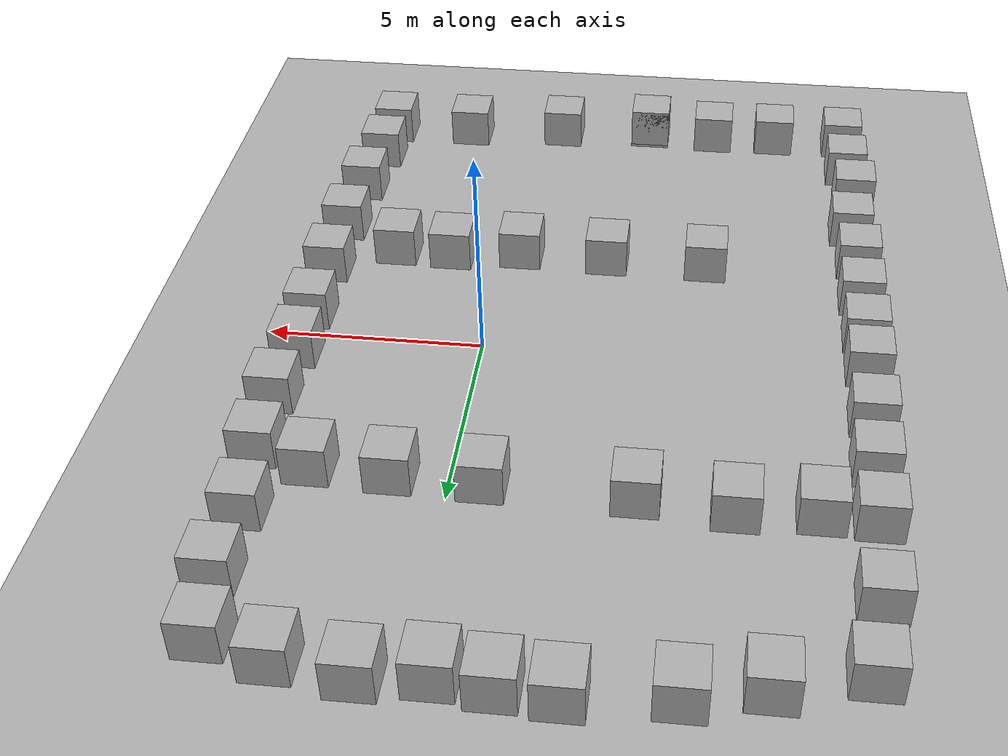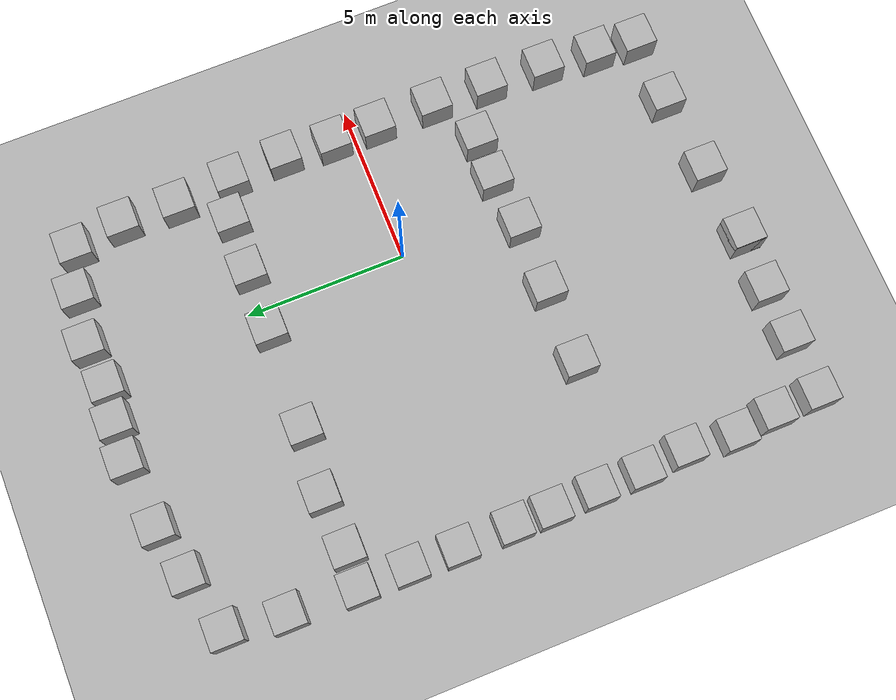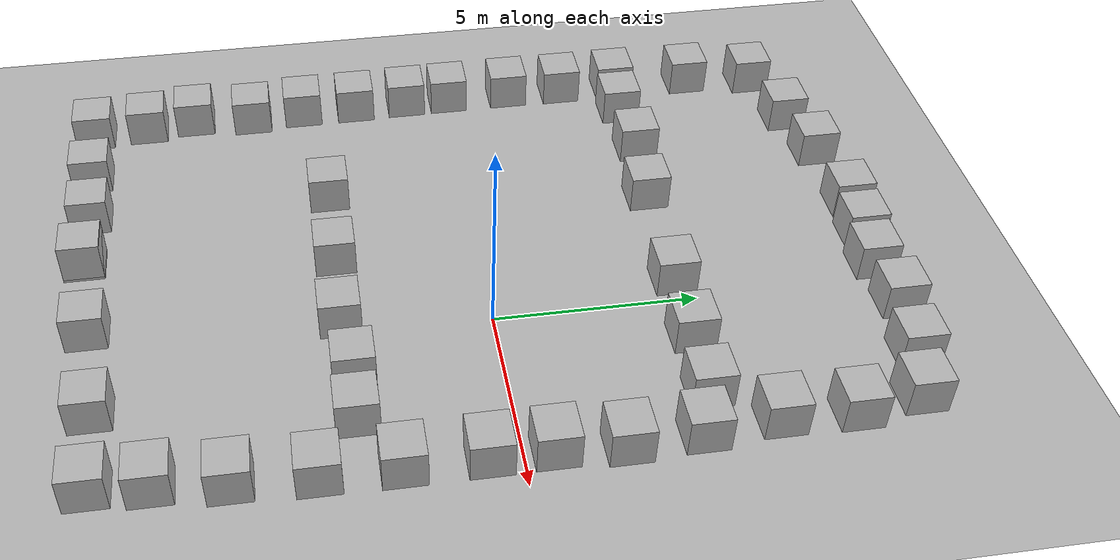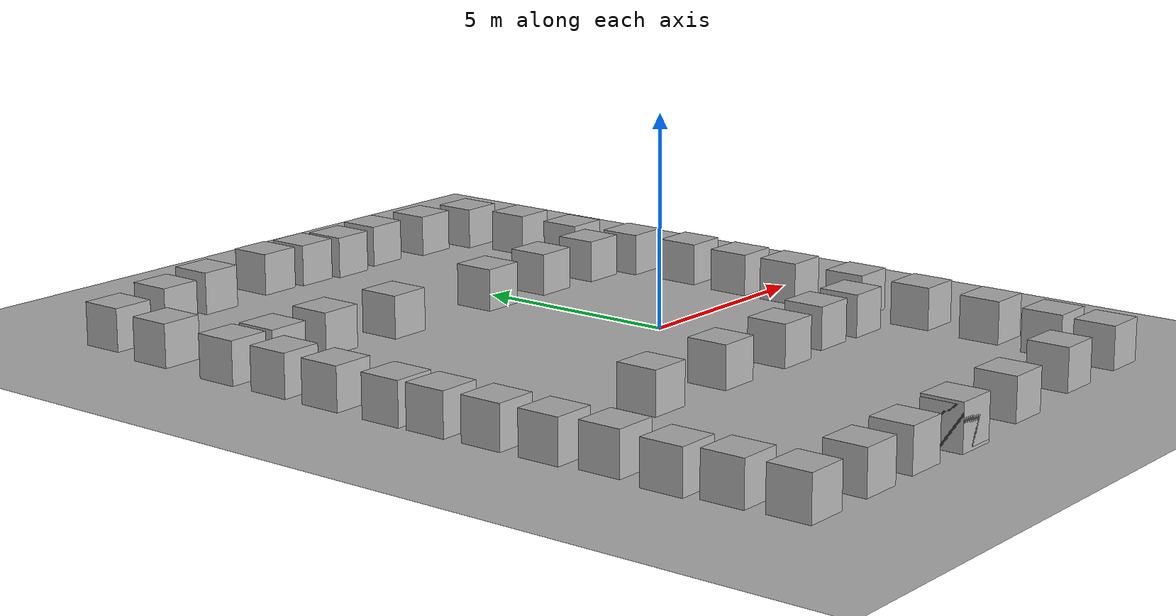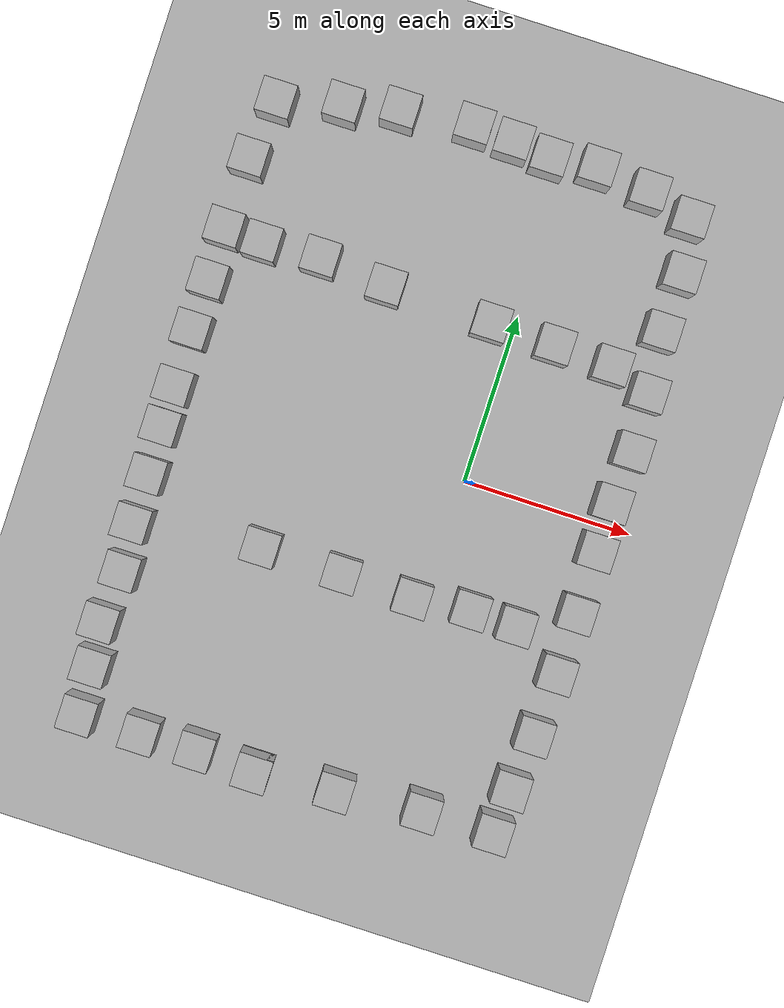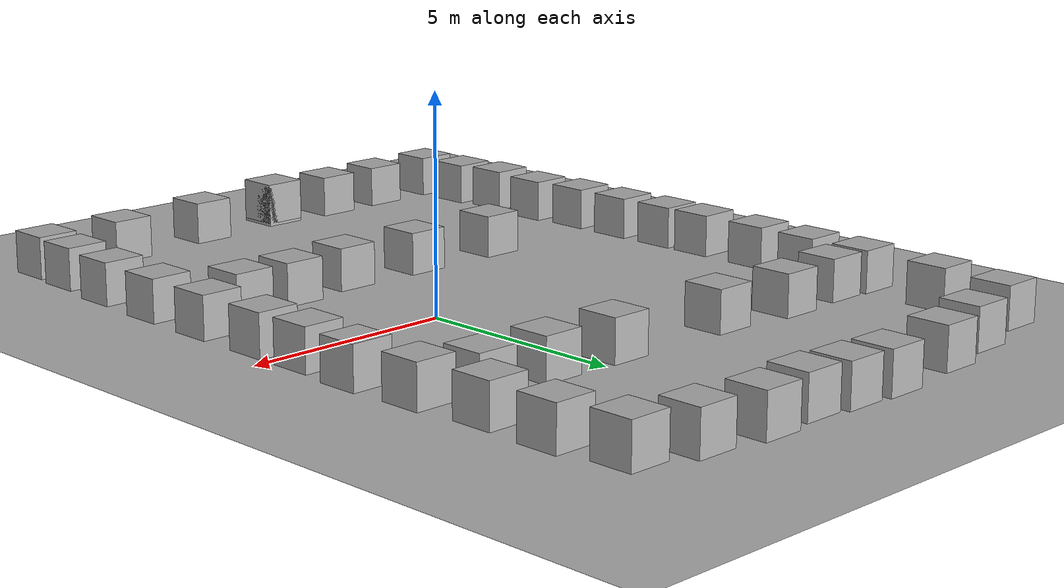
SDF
<sdf version='1.9'>
  <world name='default'>
    <plugin name='gz::sim::systems::Physics' filename='gz-sim-physics-system'/>
    <plugin name='gz::sim::systems::UserCommands' filename='gz-sim-user-commands-system'/>
    <plugin name='gz::sim::systems::SceneBroadcaster' filename='gz-sim-scene-broadcaster-system'/>
    <plugin name='gz::sim::systems::Imu' filename='gz-sim-imu-system'/>
    <scene>
      <shadows>false</shadows>
      <ambient>0.4 0.4 0.4 1</ambient>
      <background>0.7 0.7 0.7 1</background>
    </scene>
    <physics type='ode'>
      <real_time_update_rate>1000</real_time_update_rate>
      <max_step_size>0.001</max_step_size>
      <real_time_factor>1</real_time_factor>
      <ode>
        <solver>
          <type>quick</type>
          <iters>150</iters>
          <precon_iters>0</precon_iters>
          <sor>1.3999999999999999</sor>
          <use_dynamic_moi_rescaling>true</use_dynamic_moi_rescaling>
        </solver>
        <constraints>
          <cfm>1.0000000000000001e-05</cfm>
          <erp>0.20000000000000001</erp>
          <contact_max_correcting_vel>2000</contact_max_correcting_vel>
          <contact_surface_layer>0.01</contact_surface_layer>
        </constraints>
      </ode>
    </physics>
    <gravity>0 0 -9.8</gravity>
    <magnetic_field>6e-06 2.3e-05 -4.2e-05</magnetic_field>
    <atmosphere type='adiabatic'/>
    <model name='ground_plane'>
      <static>true</static>
      <link name='link'>
        <collision name='collision'>
          <geometry>
            <plane>
              <normal>0 0 1</normal>
              <size>100 100</size>
            </plane>
          </geometry>
          <surface>
            <friction>
              <ode>
                <mu>100</mu>
                <mu2>50</mu2>
              </ode>
            </friction>
            <bounce/>
            <contact/>
          </surface>
        </collision>
        <visual name='visual'>
          <cast_shadows>false</cast_shadows>
          <geometry>
            <plane>
              <normal>0 0 1</normal>
              <size>100 100</size>
            </plane>
          </geometry>
          <material>
            <ambient>0.3 0.3 0.3 1</ambient>
            <diffuse>0.7 0.7 0.7 1</diffuse>
            <specular>0.01 0.01 0.01 1</specular>
          </material>
        </visual>
        <pose>0 0 0 0 -0 0</pose>
        <inertial>
          <pose>0 0 0 0 -0 0</pose>
          <mass>1</mass>
          <inertia>
            <ixx>1</ixx>
            <ixy>0</ixy>
            <ixz>0</ixz>
            <iyy>1</iyy>
            <iyz>0</iyz>
            <izz>1</izz>
          </inertia>
        </inertial>
        <enable_wind>false</enable_wind>
      </link>
      <pose>0 0 0 0 -0 0</pose>
      <self_collide>false</self_collide>
    </model>
    <model name='box'>
      <pose>3.79125 9.11451 0.5 0 0 -0</pose>
      <link name='box_link'>
        <inertial>
          <inertia>
            <ixx>0.16666</ixx>
            <ixy>0</ixy>
            <ixz>0</ixz>
            <iyy>0.16666</iyy>
            <iyz>0</iyz>
            <izz>0.16666</izz>
          </inertia>
          <mass>1</mass>
          <pose>0 0 0 0 -0 0</pose>
        </inertial>
        <collision name='box_collision'>
          <geometry>
            <box>
              <size>1 1 1</size>
            </box>
          </geometry>
          <surface>
            <friction>
              <ode/>
            </friction>
            <bounce/>
            <contact/>
          </surface>
        </collision>
        <visual name='box_visual'>
          <geometry>
            <box>
              <size>1 1 1</size>
            </box>
          </geometry>
          <material>
            <ambient>0.3 0.3 0.3 1</ambient>
            <diffuse>0.7 0.7 0.7 1</diffuse>
            <specular>1 1 1 1</specular>
          </material>
        </visual>
        <pose>0 0 0 0 -0 0</pose>
        <enable_wind>false</enable_wind>
      </link>
      <static>false</static>
      <self_collide>false</self_collide>
    </model>
    <model name='box_1'>
      <pose>4.04789 7.54786 0.5 0 0 -0</pose>
      <link name='box_link'>
        <inertial>
          <inertia>
            <ixx>0.16666</ixx>
            <ixy>0</ixy>
            <ixz>0</ixz>
            <iyy>0.16666</iyy>
            <iyz>0</iyz>
            <izz>0.16666</izz>
          </inertia>
          <mass>1</mass>
        </inertial>
        <collision name='box_collision'>
          <geometry>
            <box>
              <size>1 1 1</size>
            </box>
          </geometry>
          <surface>
            <friction>
              <ode/>
            </friction>
            <bounce/>
            <contact/>
          </surface>
        </collision>
        <visual name='box_visual'>
          <geometry>
            <box>
              <size>1 1 1</size>
            </box>
          </geometry>
          <material>
            <ambient>0.3 0.3 0.3 1</ambient>
            <diffuse>0.7 0.7 0.7 1</diffuse>
            <specular>1 1 1 1</specular>
          </material>
        </visual>
      </link>
      <static>false</static>
      <self_collide>false</self_collide>
    </model>
    <model name='box_2'>
      <pose>3.99851 5.79752 0.5 0 0 -0</pose>
      <link name='box_link'>
        <inertial>
          <inertia>
            <ixx>0.16666</ixx>
            <ixy>0</ixy>
            <ixz>0</ixz>
            <iyy>0.16666</iyy>
            <iyz>0</iyz>
            <izz>0.16666</izz>
          </inertia>
          <mass>1</mass>
        </inertial>
        <collision name='box_collision'>
          <geometry>
            <box>
              <size>1 1 1</size>
            </box>
          </geometry>
          <surface>
            <friction>
              <ode/>
            </friction>
            <bounce/>
            <contact/>
          </surface>
        </collision>
        <visual name='box_visual'>
          <geometry>
            <box>
              <size>1 1 1</size>
            </box>
          </geometry>
          <material>
            <ambient>0.3 0.3 0.3 1</ambient>
            <diffuse>0.7 0.7 0.7 1</diffuse>
            <specular>1 1 1 1</specular>
          </material>
        </visual>
      </link>
      <static>false</static>
      <self_collide>false</self_collide>
    </model>
    <model name='box_3'>
      <pose>4.16854 4.00996 0.5 0 0 -0</pose>
      <link name='box_link'>
        <inertial>
          <inertia>
            <ixx>0.16666</ixx>
            <ixy>0</ixy>
            <ixz>0</ixz>
            <iyy>0.16666</iyy>
            <iyz>0</iyz>
            <izz>0.16666</izz>
          </inertia>
          <mass>1</mass>
        </inertial>
        <collision name='box_collision'>
          <geometry>
            <box>
              <size>1 1 1</size>
            </box>
          </geometry>
          <surface>
            <friction>
              <ode/>
            </friction>
            <bounce/>
            <contact/>
          </surface>
        </collision>
        <visual name='box_visual'>
          <geometry>
            <box>
              <size>1 1 1</size>
            </box>
          </geometry>
          <material>
            <ambient>0.3 0.3 0.3 1</ambient>
            <diffuse>0.7 0.7 0.7 1</diffuse>
            <specular>1 1 1 1</specular>
          </material>
        </visual>
      </link>
      <static>false</static>
      <self_collide>false</self_collide>
    </model>
    <model name='box_2_1'>
      <pose>4.25547 2.28201 0.5 0 0 -0</pose>
      <link name='box_link'>
        <inertial>
          <inertia>
            <ixx>0.16666</ixx>
            <ixy>0</ixy>
            <ixz>0</ixz>
            <iyy>0.16666</iyy>
            <iyz>0</iyz>
            <izz>0.16666</izz>
          </inertia>
          <mass>1</mass>
        </inertial>
        <collision name='box_collision'>
          <geometry>
            <box>
              <size>1 1 1</size>
            </box>
          </geometry>
          <surface>
            <friction>
              <ode/>
            </friction>
            <bounce/>
            <contact/>
          </surface>
        </collision>
        <visual name='box_visual'>
          <geometry>
            <box>
              <size>1 1 1</size>
            </box>
          </geometry>
          <material>
            <ambient>0.3 0.3 0.3 1</ambient>
            <diffuse>0.7 0.7 0.7 1</diffuse>
            <specular>1 1 1 1</specular>
          </material>
        </visual>
      </link>
      <static>false</static>
      <self_collide>false</self_collide>
    </model>
    <model name='box_2_2'>
      <pose>4.1513 0.701374 0.5 0 0 -0</pose>
      <link name='box_link'>
        <inertial>
          <inertia>
            <ixx>0.16666</ixx>
            <ixy>0</ixy>
            <ixz>0</ixz>
            <iyy>0.16666</iyy>
            <iyz>0</iyz>
            <izz>0.16666</izz>
          </inertia>
          <mass>1</mass>
        </inertial>
        <collision name='box_collision'>
          <geometry>
            <box>
              <size>1 1 1</size>
            </box>
          </geometry>
          <surface>
            <friction>
              <ode/>
            </friction>
            <bounce/>
            <contact/>
          </surface>
        </collision>
        <visual name='box_visual'>
          <geometry>
            <box>
              <size>1 1 1</size>
            </box>
          </geometry>
          <material>
            <ambient>0.3 0.3 0.3 1</ambient>
            <diffuse>0.7 0.7 0.7 1</diffuse>
            <specular>1 1 1 1</specular>
          </material>
        </visual>
      </link>
      <static>false</static>
      <self_collide>false</self_collide>
    </model>
    <model name='box_2_3'>
      <pose>4.16046 -0.740328 0.5 -0 0 -0</pose>
      <link name='box_link'>
        <inertial>
          <inertia>
            <ixx>0.16666</ixx>
            <ixy>0</ixy>
            <ixz>0</ixz>
            <iyy>0.16666</iyy>
            <iyz>0</iyz>
            <izz>0.16666</izz>
          </inertia>
          <mass>1</mass>
        </inertial>
        <collision name='box_collision'>
          <geometry>
            <box>
              <size>1 1 1</size>
            </box>
          </geometry>
          <surface>
            <friction>
              <ode/>
            </friction>
            <bounce/>
            <contact/>
          </surface>
        </collision>
        <visual name='box_visual'>
          <geometry>
            <box>
              <size>1 1 1</size>
            </box>
          </geometry>
          <material>
            <ambient>0.3 0.3 0.3 1</ambient>
            <diffuse>0.7 0.7 0.7 1</diffuse>
            <specular>1 1 1 1</specular>
          </material>
        </visual>
      </link>
      <static>false</static>
      <self_collide>false</self_collide>
    </model>
    <model name='box_2_4'>
      <pose>4.16196 -2.60575 0.5 0 0 -0</pose>
      <link name='box_link'>
        <inertial>
          <inertia>
            <ixx>0.16666</ixx>
            <ixy>0</ixy>
            <ixz>0</ixz>
            <iyy>0.16666</iyy>
            <iyz>0</iyz>
            <izz>0.16666</izz>
          </inertia>
          <mass>1</mass>
        </inertial>
        <collision name='box_collision'>
          <geometry>
            <box>
              <size>1 1 1</size>
            </box>
          </geometry>
          <surface>
            <friction>
              <ode/>
            </friction>
            <bounce/>
            <contact/>
          </surface>
        </collision>
        <visual name='box_visual'>
          <geometry>
            <box>
              <size>1 1 1</size>
            </box>
          </geometry>
          <material>
            <ambient>0.3 0.3 0.3 1</ambient>
            <diffuse>0.7 0.7 0.7 1</diffuse>
            <specular>1 1 1 1</specular>
          </material>
        </visual>
      </link>
      <static>false</static>
      <self_collide>false</self_collide>
    </model>
    <model name='box_2_5'>
      <pose>4.13882 -4.41398 0.5 0 0 -0</pose>
      <link name='box_link'>
        <inertial>
          <inertia>
            <ixx>0.16666</ixx>
            <ixy>0</ixy>
            <ixz>0</ixz>
            <iyy>0.16666</iyy>
            <iyz>0</iyz>
            <izz>0.16666</izz>
          </inertia>
          <mass>1</mass>
        </inertial>
        <collision name='box_collision'>
          <geometry>
            <box>
              <size>1 1 1</size>
            </box>
          </geometry>
          <surface>
            <friction>
              <ode/>
            </friction>
            <bounce/>
            <contact/>
          </surface>
        </collision>
        <visual name='box_visual'>
          <geometry>
            <box>
              <size>1 1 1</size>
            </box>
          </geometry>
          <material>
            <ambient>0.3 0.3 0.3 1</ambient>
            <diffuse>0.7 0.7 0.7 1</diffuse>
            <specular>1 1 1 1</specular>
          </material>
        </visual>
      </link>
      <static>false</static>
      <self_collide>false</self_collide>
    </model>
    <model name='box_2_6'>
      <pose>4.05922 -6.2791 0.5 0 0 -0</pose>
      <link name='box_link'>
        <inertial>
          <inertia>
            <ixx>0.16666</ixx>
            <ixy>0</ixy>
            <ixz>0</ixz>
            <iyy>0.16666</iyy>
            <iyz>0</iyz>
            <izz>0.16666</izz>
          </inertia>
          <mass>1</mass>
        </inertial>
        <collision name='box_collision'>
          <geometry>
            <box>
              <size>1 1 1</size>
            </box>
          </geometry>
          <surface>
            <friction>
              <ode/>
            </friction>
            <bounce/>
            <contact/>
          </surface>
        </collision>
        <visual name='box_visual'>
          <geometry>
            <box>
              <size>1 1 1</size>
            </box>
          </geometry>
          <material>
            <ambient>0.3 0.3 0.3 1</ambient>
            <diffuse>0.7 0.7 0.7 1</diffuse>
            <specular>1 1 1 1</specular>
          </material>
        </visual>
      </link>
      <static>false</static>
      <self_collide>false</self_collide>
    </model>
    <model name='box_2_7'>
      <pose>3.89847 -7.94707 0.5 0 0 0</pose>
      <link name='box_link'>
        <inertial>
          <inertia>
            <ixx>0.16666</ixx>
            <ixy>0</ixy>
            <ixz>0</ixz>
            <iyy>0.16666</iyy>
            <iyz>0</iyz>
            <izz>0.16666</izz>
          </inertia>
          <mass>1</mass>
        </inertial>
        <collision name='box_collision'>
          <geometry>
            <box>
              <size>1 1 1</size>
            </box>
          </geometry>
          <surface>
            <friction>
              <ode/>
            </friction>
            <bounce/>
            <contact/>
          </surface>
        </collision>
        <visual name='box_visual'>
          <geometry>
            <box>
              <size>1 1 1</size>
            </box>
          </geometry>
          <material>
            <ambient>0.3 0.3 0.3 1</ambient>
            <diffuse>0.7 0.7 0.7 1</diffuse>
            <specular>1 1 1 1</specular>
          </material>
        </visual>
      </link>
      <static>false</static>
      <self_collide>false</self_collide>
    </model>
    <model name='box_2_8'>
      <pose>3.80019 -9.27914 0.5 0 0 -0</pose>
      <link name='box_link'>
        <inertial>
          <inertia>
            <ixx>0.16666</ixx>
            <ixy>0</ixy>
            <ixz>0</ixz>
            <iyy>0.16666</iyy>
            <iyz>0</iyz>
            <izz>0.16666</izz>
          </inertia>
          <mass>1</mass>
        </inertial>
        <collision name='box_collision'>
          <geometry>
            <box>
              <size>1 1 1</size>
            </box>
          </geometry>
          <surface>
            <friction>
              <ode/>
            </friction>
            <bounce/>
            <contact/>
          </surface>
        </collision>
        <visual name='box_visual'>
          <geometry>
            <box>
              <size>1 1 1</size>
            </box>
          </geometry>
          <material>
            <ambient>0.3 0.3 0.3 1</ambient>
            <diffuse>0.7 0.7 0.7 1</diffuse>
            <specular>1 1 1 1</specular>
          </material>
        </visual>
      </link>
      <static>false</static>
      <self_collide>false</self_collide>
    </model>
    <model name='box_2_9'>
      <pose>1.67503 -9.31621 0.5 0 0 -0</pose>
      <link name='box_link'>
        <inertial>
          <inertia>
            <ixx>0.16666</ixx>
            <ixy>0</ixy>
            <ixz>0</ixz>
            <iyy>0.16666</iyy>
            <iyz>0</iyz>
            <izz>0.16666</izz>
          </inertia>
          <mass>1</mass>
        </inertial>
        <collision name='box_collision'>
          <geometry>
            <box>
              <size>1 1 1</size>
            </box>
          </geometry>
          <surface>
            <friction>
              <ode/>
            </friction>
            <bounce/>
            <contact/>
          </surface>
        </collision>
        <visual name='box_visual'>
          <geometry>
            <box>
              <size>1 1 1</size>
            </box>
          </geometry>
          <material>
            <ambient>0.3 0.3 0.3 1</ambient>
            <diffuse>0.7 0.7 0.7 1</diffuse>
            <specular>1 1 1 1</specular>
          </material>
        </visual>
      </link>
      <static>false</static>
      <self_collide>false</self_collide>
    </model>
    <model name='box_2_10'>
      <pose>-0.869865 -9.52765 0.5 0 0 -0</pose>
      <link name='box_link'>
        <inertial>
          <inertia>
            <ixx>0.16666</ixx>
            <ixy>0</ixy>
            <ixz>0</ixz>
            <iyy>0.16666</iyy>
            <iyz>0</iyz>
            <izz>0.16666</izz>
          </inertia>
          <mass>1</mass>
        </inertial>
        <collision name='box_collision'>
          <geometry>
            <box>
              <size>1 1 1</size>
            </box>
          </geometry>
          <surface>
            <friction>
              <ode/>
            </friction>
            <bounce/>
            <contact/>
          </surface>
        </collision>
        <visual name='box_visual'>
          <geometry>
            <box>
              <size>1 1 1</size>
            </box>
          </geometry>
          <material>
            <ambient>0.3 0.3 0.3 1</ambient>
            <diffuse>0.7 0.7 0.7 1</diffuse>
            <specular>1 1 1 1</specular>
          </material>
        </visual>
      </link>
      <static>false</static>
      <self_collide>false</self_collide>
    </model>
    <model name='box_2_11'>
      <pose>-3.26939 -9.71332 0.5 0 0 -0</pose>
      <link name='box_link'>
        <inertial>
          <inertia>
            <ixx>0.16666</ixx>
            <ixy>0</ixy>
            <ixz>0</ixz>
            <iyy>0.16666</iyy>
            <iyz>0</iyz>
            <izz>0.16666</izz>
          </inertia>
          <mass>1</mass>
        </inertial>
        <collision name='box_collision'>
          <geometry>
            <box>
              <size>1 1 1</size>
            </box>
          </geometry>
          <surface>
            <friction>
              <ode/>
            </friction>
            <bounce/>
            <contact/>
          </surface>
        </collision>
        <visual name='box_visual'>
          <geometry>
            <box>
              <size>1 1 1</size>
            </box>
          </geometry>
          <material>
            <ambient>0.3 0.3 0.3 1</ambient>
            <diffuse>0.7 0.7 0.7 1</diffuse>
            <specular>1 1 1 1</specular>
          </material>
        </visual>
      </link>
      <static>false</static>
      <self_collide>false</self_collide>
    </model>
    <model name='box_2_12'>
      <pose>-3.26939 -9.71332 0.566652 -0 -0 -0</pose>
      <link name='box_link'>
        <inertial>
          <inertia>
            <ixx>0.16666</ixx>
            <ixy>0</ixy>
            <ixz>0</ixz>
            <iyy>0.16666</iyy>
            <iyz>0</iyz>
            <izz>0.16666</izz>
          </inertia>
          <mass>1</mass>
        </inertial>
        <collision name='box_collision'>
          <geometry>
            <box>
              <size>1 1 1</size>
            </box>
          </geometry>
          <surface>
            <friction>
              <ode/>
            </friction>
            <bounce/>
            <contact/>
          </surface>
        </collision>
        <visual name='box_visual'>
          <geometry>
            <box>
              <size>1 1 1</size>
            </box>
          </geometry>
          <material>
            <ambient>0.3 0.3 0.3 1</ambient>
            <diffuse>0.7 0.7 0.7 1</diffuse>
            <specular>1 1 1 1</specular>
          </material>
        </visual>
      </link>
      <static>false</static>
      <self_collide>false</self_collide>
    </model>
    <model name='box_2_13'>
      <pose>-4.99672 -9.63876 0.5 0 0 -0</pose>
      <link name='box_link'>
        <inertial>
          <inertia>
            <ixx>0.16666</ixx>
            <ixy>0</ixy>
            <ixz>0</ixz>
            <iyy>0.16666</iyy>
            <iyz>0</iyz>
            <izz>0.16666</izz>
          </inertia>
          <mass>1</mass>
        </inertial>
        <collision name='box_collision'>
          <geometry>
            <box>
              <size>1 1 1</size>
            </box>
          </geometry>
          <surface>
            <friction>
              <ode/>
            </friction>
            <bounce/>
            <contact/>
          </surface>
        </collision>
        <visual name='box_visual'>
          <geometry>
            <box>
              <size>1 1 1</size>
            </box>
          </geometry>
          <material>
            <ambient>0.3 0.3 0.3 1</ambient>
            <diffuse>0.7 0.7 0.7 1</diffuse>
            <specular>1 1 1 1</specular>
          </material>
        </visual>
      </link>
      <static>false</static>
      <self_collide>false</self_collide>
    </model>
    <model name='box_2_14'>
      <pose>-6.65122 -9.67737 0.5 0 0 -0</pose>
      <link name='box_link'>
        <inertial>
          <inertia>
            <ixx>0.16666</ixx>
            <ixy>0</ixy>
            <ixz>0</ixz>
            <iyy>0.16666</iyy>
            <iyz>0</iyz>
            <izz>0.16666</izz>
          </inertia>
          <mass>1</mass>
        </inertial>
        <collision name='box_collision'>
          <geometry>
            <box>
              <size>1 1 1</size>
            </box>
          </geometry>
          <surface>
            <friction>
              <ode/>
            </friction>
            <bounce/>
            <contact/>
          </surface>
        </collision>
        <visual name='box_visual'>
          <geometry>
            <box>
              <size>1 1 1</size>
            </box>
          </geometry>
          <material>
            <ambient>0.3 0.3 0.3 1</ambient>
            <diffuse>0.7 0.7 0.7 1</diffuse>
            <specular>1 1 1 1</specular>
          </material>
        </visual>
      </link>
      <static>false</static>
      <self_collide>false</self_collide>
    </model>
    <model name='box_2_15'>
      <pose>-8.49429 -9.68787 0.5 0 0 -0</pose>
      <link name='box_link'>
        <inertial>
          <inertia>
            <ixx>0.16666</ixx>
            <ixy>0</ixy>
            <ixz>0</ixz>
            <iyy>0.16666</iyy>
            <iyz>0</iyz>
            <izz>0.16666</izz>
          </inertia>
          <mass>1</mass>
        </inertial>
        <collision name='box_collision'>
          <geometry>
            <box>
              <size>1 1 1</size>
            </box>
          </geometry>
          <surface>
            <friction>
              <ode/>
            </friction>
            <bounce/>
            <contact/>
          </surface>
        </collision>
        <visual name='box_visual'>
          <geometry>
            <box>
              <size>1 1 1</size>
            </box>
          </geometry>
          <material>
            <ambient>0.3 0.3 0.3 1</ambient>
            <diffuse>0.7 0.7 0.7 1</diffuse>
            <specular>1 1 1 1</specular>
          </material>
        </visual>
      </link>
      <static>false</static>
      <self_collide>false</self_collide>
    </model>
    <model name='box_2_16'>
      <pose>-8.56323 -8.26447 0.5 0 0 -0</pose>
      <link name='box_link'>
        <inertial>
          <inertia>
            <ixx>0.16666</ixx>
            <ixy>0</ixy>
            <ixz>0</ixz>
            <iyy>0.16666</iyy>
            <iyz>0</iyz>
            <izz>0.16666</izz>
          </inertia>
          <mass>1</mass>
        </inertial>
        <collision name='box_collision'>
          <geometry>
            <box>
              <size>1 1 1</size>
            </box>
          </geometry>
          <surface>
            <friction>
              <ode/>
            </friction>
            <bounce/>
            <contact/>
          </surface>
        </collision>
        <visual name='box_visual'>
          <geometry>
            <box>
              <size>1 1 1</size>
            </box>
          </geometry>
          <material>
            <ambient>0.3 0.3 0.3 1</ambient>
            <diffuse>0.7 0.7 0.7 1</diffuse>
            <specular>1 1 1 1</specular>
          </material>
        </visual>
      </link>
      <static>false</static>
      <self_collide>false</self_collide>
    </model>
    <model name='box_2_17'>
      <pose>-8.72253 -6.98524 0.5 0 0 -0</pose>
      <link name='box_link'>
        <inertial>
          <inertia>
            <ixx>0.16666</ixx>
            <ixy>0</ixy>
            <ixz>0</ixz>
            <iyy>0.16666</iyy>
            <iyz>0</iyz>
            <izz>0.16666</izz>
          </inertia>
          <mass>1</mass>
        </inertial>
        <collision name='box_collision'>
          <geometry>
            <box>
              <size>1 1 1</size>
            </box>
          </geometry>
          <surface>
            <friction>
              <ode/>
            </friction>
            <bounce/>
            <contact/>
          </surface>
        </collision>
        <visual name='box_visual'>
          <geometry>
            <box>
              <size>1 1 1</size>
            </box>
          </geometry>
          <material>
            <ambient>0.3 0.3 0.3 1</ambient>
            <diffuse>0.7 0.7 0.7 1</diffuse>
            <specular>1 1 1 1</specular>
          </material>
        </visual>
      </link>
      <static>false</static>
      <self_collide>false</self_collide>
    </model>
    <model name='box_2_18'>
      <pose>-8.58509 -5.41594 0.5 0 0 -0</pose>
      <link name='box_link'>
        <inertial>
          <inertia>
            <ixx>0.16666</ixx>
            <ixy>0</ixy>
            <ixz>0</ixz>
            <iyy>0.16666</iyy>
            <iyz>0</iyz>
            <izz>0.16666</izz>
          </inertia>
          <mass>1</mass>
        </inertial>
        <collision name='box_collision'>
          <geometry>
            <box>
              <size>1 1 1</size>
            </box>
          </geometry>
          <surface>
            <friction>
              <ode/>
            </friction>
            <bounce/>
            <contact/>
          </surface>
        </collision>
        <visual name='box_visual'>
          <geometry>
            <box>
              <size>1 1 1</size>
            </box>
          </geometry>
          <material>
            <ambient>0.3 0.3 0.3 1</ambient>
            <diffuse>0.7 0.7 0.7 1</diffuse>
            <specular>1 1 1 1</specular>
          </material>
        </visual>
      </link>
      <static>false</static>
      <self_collide>false</self_collide>
    </model>
    <model name='box_2_19'>
      <pose>-8.7131 -4.01894 0.5 0 0 -0</pose>
      <link name='box_link'>
        <inertial>
          <inertia>
            <ixx>0.16666</ixx>
            <ixy>0</ixy>
            <ixz>0</ixz>
            <iyy>0.16666</iyy>
            <iyz>0</iyz>
            <izz>0.16666</izz>
          </inertia>
          <mass>1</mass>
        </inertial>
        <collision name='box_collision'>
          <geometry>
            <box>
              <size>1 1 1</size>
            </box>
          </geometry>
          <surface>
            <friction>
              <ode/>
            </friction>
            <bounce/>
            <contact/>
          </surface>
        </collision>
        <visual name='box_visual'>
          <geometry>
            <box>
              <size>1 1 1</size>
            </box>
          </geometry>
          <material>
            <ambient>0.3 0.3 0.3 1</ambient>
            <diffuse>0.7 0.7 0.7 1</diffuse>
            <specular>1 1 1 1</specular>
          </material>
        </visual>
      </link>
      <static>false</static>
      <self_collide>false</self_collide>
    </model>
    <model name='box_2_20'>
      <pose>-8.72253 -2.56457 0.5 0 0 -0</pose>
      <link name='box_link'>
        <inertial>
          <inertia>
            <ixx>0.16666</ixx>
            <ixy>0</ixy>
            <ixz>0</ixz>
            <iyy>0.16666</iyy>
            <iyz>0</iyz>
            <izz>0.16666</izz>
          </inertia>
          <mass>1</mass>
        </inertial>
        <collision name='box_collision'>
          <geometry>
            <box>
              <size>1 1 1</size>
            </box>
          </geometry>
          <surface>
            <friction>
              <ode/>
            </friction>
            <bounce/>
            <contact/>
          </surface>
        </collision>
        <visual name='box_visual'>
          <geometry>
            <box>
              <size>1 1 1</size>
            </box>
          </geometry>
          <material>
            <ambient>0.3 0.3 0.3 1</ambient>
            <diffuse>0.7 0.7 0.7 1</diffuse>
            <specular>1 1 1 1</specular>
          </material>
        </visual>
      </link>
      <static>false</static>
      <self_collide>false</self_collide>
    </model>
    <model name='box_2_21'>
      <pose>-8.76327 -1.13897 0.5 0 0 -0</pose>
      <link name='box_link'>
        <inertial>
          <inertia>
            <ixx>0.16666</ixx>
            <ixy>0</ixy>
            <ixz>0</ixz>
            <iyy>0.16666</iyy>
            <iyz>0</iyz>
            <izz>0.16666</izz>
          </inertia>
          <mass>1</mass>
        </inertial>
        <collision name='box_collision'>
          <geometry>
            <box>
              <size>1 1 1</size>
            </box>
          </geometry>
          <surface>
            <friction>
              <ode/>
            </friction>
            <bounce/>
            <contact/>
          </surface>
        </collision>
        <visual name='box_visual'>
          <geometry>
            <box>
              <size>1 1 1</size>
            </box>
          </geometry>
          <material>
            <ambient>0.3 0.3 0.3 1</ambient>
            <diffuse>0.7 0.7 0.7 1</diffuse>
            <specular>1 1 1 1</specular>
          </material>
        </visual>
      </link>
      <static>false</static>
      <self_collide>false</self_collide>
    </model>
    <model name='box_2_22'>
      <pose>-8.77929 0.053914 0.5 0 0 -0</pose>
      <link name='box_link'>
        <inertial>
          <inertia>
            <ixx>0.16666</ixx>
            <ixy>0</ixy>
            <ixz>0</ixz>
            <iyy>0.16666</iyy>
            <iyz>0</iyz>
            <izz>0.16666</izz>
          </inertia>
          <mass>1</mass>
        </inertial>
        <collision name='box_collision'>
          <geometry>
            <box>
              <size>1 1 1</size>
            </box>
          </geometry>
          <surface>
            <friction>
              <ode/>
            </friction>
            <bounce/>
            <contact/>
          </surface>
        </collision>
        <visual name='box_visual'>
          <geometry>
            <box>
              <size>1 1 1</size>
            </box>
          </geometry>
          <material>
            <ambient>0.3 0.3 0.3 1</ambient>
            <diffuse>0.7 0.7 0.7 1</diffuse>
            <specular>1 1 1 1</specular>
          </material>
        </visual>
      </link>
      <static>false</static>
      <self_collide>false</self_collide>
    </model>
    <model name='box_2_23'>
      <pose>-8.78525 1.74215 0.5 0 0 -0</pose>
      <link name='box_link'>
        <inertial>
          <inertia>
            <ixx>0.16666</ixx>
            <ixy>0</ixy>
            <ixz>0</ixz>
            <iyy>0.16666</iyy>
            <iyz>0</iyz>
            <izz>0.16666</izz>
          </inertia>
          <mass>1</mass>
        </inertial>
        <collision name='box_collision'>
          <geometry>
            <box>
              <size>1 1 1</size>
            </box>
          </geometry>
          <surface>
            <friction>
              <ode/>
            </friction>
            <bounce/>
            <contact/>
          </surface>
        </collision>
        <visual name='box_visual'>
          <geometry>
            <box>
              <size>1 1 1</size>
            </box>
          </geometry>
          <material>
            <ambient>0.3 0.3 0.3 1</ambient>
            <diffuse>0.7 0.7 0.7 1</diffuse>
            <specular>1 1 1 1</specular>
          </material>
        </visual>
      </link>
      <static>false</static>
      <self_collide>false</self_collide>
    </model>
    <model name='box_2_24'>
      <pose>-8.7654 3.25494 0.5 0 0 -0</pose>
      <link name='box_link'>
        <inertial>
          <inertia>
            <ixx>0.16666</ixx>
            <ixy>0</ixy>
            <ixz>0</ixz>
            <iyy>0.16666</iyy>
            <iyz>0</iyz>
            <izz>0.16666</izz>
          </inertia>
          <mass>1</mass>
        </inertial>
        <collision name='box_collision'>
          <geometry>
            <box>
              <size>1 1 1</size>
            </box>
          </geometry>
          <surface>
            <friction>
              <ode/>
            </friction>
            <bounce/>
            <contact/>
          </surface>
        </collision>
        <visual name='box_visual'>
          <geometry>
            <box>
              <size>1 1 1</size>
            </box>
          </geometry>
          <material>
            <ambient>0.3 0.3 0.3 1</ambient>
            <diffuse>0.7 0.7 0.7 1</diffuse>
            <specular>1 1 1 1</specular>
          </material>
        </visual>
      </link>
      <static>false</static>
      <self_collide>false</self_collide>
    </model>
    <model name='box_2_25'>
      <pose>-8.77433 4.79727 0.5 0 0 -0</pose>
      <link name='box_link'>
        <inertial>
          <inertia>
            <ixx>0.16666</ixx>
            <ixy>0</ixy>
            <ixz>0</ixz>
            <iyy>0.16666</iyy>
            <iyz>0</iyz>
            <izz>0.16666</izz>
          </inertia>
          <mass>1</mass>
        </inertial>
        <collision name='box_collision'>
          <geometry>
            <box>
              <size>1 1 1</size>
            </box>
          </geometry>
          <surface>
            <friction>
              <ode/>
            </friction>
            <bounce/>
            <contact/>
          </surface>
        </collision>
        <visual name='box_visual'>
          <geometry>
            <box>
              <size>1 1 1</size>
            </box>
          </geometry>
          <material>
            <ambient>0.3 0.3 0.3 1</ambient>
            <diffuse>0.7 0.7 0.7 1</diffuse>
            <specular>1 1 1 1</specular>
          </material>
        </visual>
      </link>
      <static>false</static>
      <self_collide>false</self_collide>
    </model>
    <model name='box_2_26'>
      <pose>-8.71676 6.92078 0.5 0 0 -0</pose>
      <link name='box_link'>
        <inertial>
          <inertia>
            <ixx>0.16666</ixx>
            <ixy>0</ixy>
            <ixz>0</ixz>
            <iyy>0.16666</iyy>
            <iyz>0</iyz>
            <izz>0.16666</izz>
          </inertia>
          <mass>1</mass>
        </inertial>
        <collision name='box_collision'>
          <geometry>
            <box>
              <size>1 1 1</size>
            </box>
          </geometry>
          <surface>
            <friction>
              <ode/>
            </friction>
            <bounce/>
            <contact/>
          </surface>
        </collision>
        <visual name='box_visual'>
          <geometry>
            <box>
              <size>1 1 1</size>
            </box>
          </geometry>
          <material>
            <ambient>0.3 0.3 0.3 1</ambient>
            <diffuse>0.7 0.7 0.7 1</diffuse>
            <specular>1 1 1 1</specular>
          </material>
        </visual>
      </link>
      <static>false</static>
      <self_collide>false</self_collide>
    </model>
    <model name='box_2_27'>
      <pose>-8.48841 8.71815 0.5 0 0 -0</pose>
      <link name='box_link'>
        <inertial>
          <inertia>
            <ixx>0.16666</ixx>
            <ixy>0</ixy>
            <ixz>0</ixz>
            <iyy>0.16666</iyy>
            <iyz>0</iyz>
            <izz>0.16666</izz>
          </inertia>
          <mass>1</mass>
        </inertial>
        <collision name='box_collision'>
          <geometry>
            <box>
              <size>1 1 1</size>
            </box>
          </geometry>
          <surface>
            <friction>
              <ode/>
            </friction>
            <bounce/>
            <contact/>
          </surface>
        </collision>
        <visual name='box_visual'>
          <geometry>
            <box>
              <size>1 1 1</size>
            </box>
          </geometry>
          <material>
            <ambient>0.3 0.3 0.3 1</ambient>
            <diffuse>0.7 0.7 0.7 1</diffuse>
            <specular>1 1 1 1</specular>
          </material>
        </visual>
      </link>
      <static>false</static>
      <self_collide>false</self_collide>
    </model>
    <model name='box_2_28'>
      <pose>-6.63574 9.20093 0.5 0 0 -0</pose>
      <link name='box_link'>
        <inertial>
          <inertia>
            <ixx>0.16666</ixx>
            <ixy>0</ixy>
            <ixz>0</ixz>
            <iyy>0.16666</iyy>
            <iyz>0</iyz>
            <izz>0.16666</izz>
          </inertia>
          <mass>1</mass>
        </inertial>
        <collision name='box_collision'>
          <geometry>
            <box>
              <size>1 1 1</size>
            </box>
          </geometry>
          <surface>
            <friction>
              <ode/>
            </friction>
            <bounce/>
            <contact/>
          </surface>
        </collision>
        <visual name='box_visual'>
          <geometry>
            <box>
              <size>1 1 1</size>
            </box>
          </geometry>
          <material>
            <ambient>0.3 0.3 0.3 1</ambient>
            <diffuse>0.7 0.7 0.7 1</diffuse>
            <specular>1 1 1 1</specular>
          </material>
        </visual>
      </link>
      <static>false</static>
      <self_collide>false</self_collide>
    </model>
    <model name='box_2_29'>
      <pose>-5.03316 9.54874 0.5 0 0 -0</pose>
      <link name='box_link'>
        <inertial>
          <inertia>
            <ixx>0.16666</ixx>
            <ixy>0</ixy>
            <ixz>0</ixz>
            <iyy>0.16666</iyy>
            <iyz>0</iyz>
            <izz>0.16666</izz>
          </inertia>
          <mass>1</mass>
        </inertial>
        <collision name='box_collision'>
          <geometry>
            <box>
              <size>1 1 1</size>
            </box>
          </geometry>
          <surface>
            <friction>
              <ode/>
            </friction>
            <bounce/>
            <contact/>
          </surface>
        </collision>
        <visual name='box_visual'>
          <geometry>
            <box>
              <size>1 1 1</size>
            </box>
          </geometry>
          <material>
            <ambient>0.3 0.3 0.3 1</ambient>
            <diffuse>0.7 0.7 0.7 1</diffuse>
            <specular>1 1 1 1</specular>
          </material>
        </visual>
      </link>
      <static>false</static>
      <self_collide>false</self_collide>
    </model>
    <model name='box_2_30'>
      <pose>-2.89791 9.76142 0.5 0 0 -0</pose>
      <link name='box_link'>
        <inertial>
          <inertia>
            <ixx>0.16666</ixx>
            <ixy>0</ixy>
            <ixz>0</ixz>
            <iyy>0.16666</iyy>
            <iyz>0</iyz>
            <izz>0.16666</izz>
          </inertia>
          <mass>1</mass>
        </inertial>
        <collision name='box_collision'>
          <geometry>
            <box>
              <size>1 1 1</size>
            </box>
          </geometry>
          <surface>
            <friction>
              <ode/>
            </friction>
            <bounce/>
            <contact/>
          </surface>
        </collision>
        <visual name='box_visual'>
          <geometry>
            <box>
              <size>1 1 1</size>
            </box>
          </geometry>
          <material>
            <ambient>0.3 0.3 0.3 1</ambient>
            <diffuse>0.7 0.7 0.7 1</diffuse>
            <specular>1 1 1 1</specular>
          </material>
        </visual>
      </link>
      <static>false</static>
      <self_collide>false</self_collide>
    </model>
    <model name='box_2_31'>
      <pose>-1.69753 9.68402 0.5 0 0 -0</pose>
      <link name='box_link'>
        <inertial>
          <inertia>
            <ixx>0.16666</ixx>
            <ixy>0</ixy>
            <ixz>0</ixz>
            <iyy>0.16666</iyy>
            <iyz>0</iyz>
            <izz>0.16666</izz>
          </inertia>
          <mass>1</mass>
        </inertial>
        <collision name='box_collision'>
          <geometry>
            <box>
              <size>1 1 1</size>
            </box>
          </geometry>
          <surface>
            <friction>
              <ode/>
            </friction>
            <bounce/>
            <contact/>
          </surface>
        </collision>
        <visual name='box_visual'>
          <geometry>
            <box>
              <size>1 1 1</size>
            </box>
          </geometry>
          <material>
            <ambient>0.3 0.3 0.3 1</ambient>
            <diffuse>0.7 0.7 0.7 1</diffuse>
            <specular>1 1 1 1</specular>
          </material>
        </visual>
      </link>
      <static>false</static>
      <self_collide>false</self_collide>
    </model>
    <model name='box_2_32'>
      <pose>-0.56086 9.55686 0.5 0 0 -0</pose>
      <link name='box_link'>
        <inertial>
          <inertia>
            <ixx>0.16666</ixx>
            <ixy>0</ixy>
            <ixz>0</ixz>
            <iyy>0.16666</iyy>
            <iyz>0</iyz>
            <izz>0.16666</izz>
          </inertia>
          <mass>1</mass>
        </inertial>
        <collision name='box_collision'>
          <geometry>
            <box>
              <size>1 1 1</size>
            </box>
          </geometry>
          <surface>
            <friction>
              <ode/>
            </friction>
            <bounce/>
            <contact/>
          </surface>
        </collision>
        <visual name='box_visual'>
          <geometry>
            <box>
              <size>1 1 1</size>
            </box>
          </geometry>
          <material>
            <ambient>0.3 0.3 0.3 1</ambient>
            <diffuse>0.7 0.7 0.7 1</diffuse>
            <specular>1 1 1 1</specular>
          </material>
        </visual>
      </link>
      <static>false</static>
      <self_collide>false</self_collide>
    </model>
    <model name='box_2_33'>
      <pose>0.827053 9.70596 0.5 0 0 -0</pose>
      <link name='box_link'>
        <inertial>
          <inertia>
            <ixx>0.16666</ixx>
            <ixy>0</ixy>
            <ixz>0</ixz>
            <iyy>0.16666</iyy>
            <iyz>0</iyz>
            <izz>0.16666</izz>
          </inertia>
          <mass>1</mass>
        </inertial>
        <collision name='box_collision'>
          <geometry>
            <box>
              <size>1 1 1</size>
            </box>
          </geometry>
          <surface>
            <friction>
              <ode/>
            </friction>
            <bounce/>
            <contact/>
          </surface>
        </collision>
        <visual name='box_visual'>
          <geometry>
            <box>
              <size>1 1 1</size>
            </box>
          </geometry>
          <material>
            <ambient>0.3 0.3 0.3 1</ambient>
            <diffuse>0.7 0.7 0.7 1</diffuse>
            <specular>1 1 1 1</specular>
          </material>
        </visual>
      </link>
      <static>false</static>
      <self_collide>false</self_collide>
    </model>
    <model name='box_2_34'>
      <pose>2.42663 9.50199 0.5 0 0 -0</pose>
      <link name='box_link'>
        <inertial>
          <inertia>
            <ixx>0.16666</ixx>
            <ixy>0</ixy>
            <ixz>0</ixz>
            <iyy>0.16666</iyy>
            <iyz>0</iyz>
            <izz>0.16666</izz>
          </inertia>
          <mass>1</mass>
        </inertial>
        <collision name='box_collision'>
          <geometry>
            <box>
              <size>1 1 1</size>
            </box>
          </geometry>
          <surface>
            <friction>
              <ode/>
            </friction>
            <bounce/>
            <contact/>
          </surface>
        </collision>
        <visual name='box_visual'>
          <geometry>
            <box>
              <size>1 1 1</size>
            </box>
          </geometry>
          <material>
            <ambient>0.3 0.3 0.3 1</ambient>
            <diffuse>0.7 0.7 0.7 1</diffuse>
            <specular>1 1 1 1</specular>
          </material>
        </visual>
      </link>
      <static>false</static>
      <self_collide>false</self_collide>
    </model>
    <model name='box_2_35'>
      <pose>2.94826 4.43679 0.5 0 0 -0</pose>
      <link name='box_link'>
        <inertial>
          <inertia>
            <ixx>0.16666</ixx>
            <ixy>0</ixy>
            <ixz>0</ixz>
            <iyy>0.16666</iyy>
            <iyz>0</iyz>
            <izz>0.16666</izz>
          </inertia>
          <mass>1</mass>
        </inertial>
        <collision name='box_collision'>
          <geometry>
            <box>
              <size>1 1 1</size>
            </box>
          </geometry>
          <surface>
            <friction>
              <ode/>
            </friction>
            <bounce/>
            <contact/>
          </surface>
        </collision>
        <visual name='box_visual'>
          <geometry>
            <box>
              <size>1 1 1</size>
            </box>
          </geometry>
          <material>
            <ambient>0.3 0.3 0.3 1</ambient>
            <diffuse>0.7 0.7 0.7 1</diffuse>
            <specular>1 1 1 1</specular>
          </material>
        </visual>
      </link>
      <static>false</static>
      <self_collide>false</self_collide>
    </model>
    <model name='box_2_36'>
      <pose>1.20928 4.50906 0.5 0 0 -0</pose>
      <link name='box_link'>
        <inertial>
          <inertia>
            <ixx>0.16666</ixx>
            <ixy>0</ixy>
            <ixz>0</ixz>
            <iyy>0.16666</iyy>
            <iyz>0</iyz>
            <izz>0.16666</izz>
          </inertia>
          <mass>1</mass>
        </inertial>
        <collision name='box_collision'>
          <geometry>
            <box>
              <size>1 1 1</size>
            </box>
          </geometry>
          <surface>
            <friction>
              <ode/>
            </friction>
            <bounce/>
            <contact/>
          </surface>
        </collision>
        <visual name='box_visual'>
          <geometry>
            <box>
              <size>1 1 1</size>
            </box>
          </geometry>
          <material>
            <ambient>0.3 0.3 0.3 1</ambient>
            <diffuse>0.7 0.7 0.7 1</diffuse>
            <specular>1 1 1 1</specular>
          </material>
        </visual>
      </link>
      <static>false</static>
      <self_collide>false</self_collide>
    </model>
    <model name='box_2_37'>
      <pose>-0.711957 4.55901 0.5 0 0 -0</pose>
      <link name='box_link'>
        <inertial>
          <inertia>
            <ixx>0.16666</ixx>
            <ixy>0</ixy>
            <ixz>0</ixz>
            <iyy>0.16666</iyy>
            <iyz>0</iyz>
            <izz>0.16666</izz>
          </inertia>
          <mass>1</mass>
        </inertial>
        <collision name='box_collision'>
          <geometry>
            <box>
              <size>1 1 1</size>
            </box>
          </geometry>
          <surface>
            <friction>
              <ode/>
            </friction>
            <bounce/>
            <contact/>
          </surface>
        </collision>
        <visual name='box_visual'>
          <geometry>
            <box>
              <size>1 1 1</size>
            </box>
          </geometry>
          <material>
            <ambient>0.3 0.3 0.3 1</ambient>
            <diffuse>0.7 0.7 0.7 1</diffuse>
            <specular>1 1 1 1</specular>
          </material>
        </visual>
      </link>
      <static>false</static>
      <self_collide>false</self_collide>
    </model>
    <model name='box_2_38'>
      <pose>-3.88553 4.64104 0.5 -0 0 0</pose>
      <link name='box_link'>
        <inertial>
          <inertia>
            <ixx>0.16666</ixx>
            <ixy>0</ixy>
            <ixz>0</ixz>
            <iyy>0.16666</iyy>
            <iyz>0</iyz>
            <izz>0.16666</izz>
          </inertia>
          <mass>1</mass>
        </inertial>
        <collision name='box_collision'>
          <geometry>
            <box>
              <size>1 1 1</size>
            </box>
          </geometry>
          <surface>
            <friction>
              <ode/>
            </friction>
            <bounce/>
            <contact/>
          </surface>
        </collision>
        <visual name='box_visual'>
          <geometry>
            <box>
              <size>1 1 1</size>
            </box>
          </geometry>
          <material>
            <ambient>0.3 0.3 0.3 1</ambient>
            <diffuse>0.7 0.7 0.7 1</diffuse>
            <specular>1 1 1 1</specular>
          </material>
        </visual>
      </link>
      <static>false</static>
      <self_collide>false</self_collide>
    </model>
    <model name='box_2_39'>
      <pose>-5.90752 4.83737 0.5 0 0 -0</pose>
      <link name='box_link'>
        <inertial>
          <inertia>
            <ixx>0.16666</ixx>
            <ixy>0</ixy>
            <ixz>0</ixz>
            <iyy>0.16666</iyy>
            <iyz>0</iyz>
            <izz>0.16666</izz>
          </inertia>
          <mass>1</mass>
        </inertial>
        <collision name='box_collision'>
          <geometry>
            <box>
              <size>1 1 1</size>
            </box>
          </geometry>
          <surface>
            <friction>
              <ode/>
            </friction>
            <bounce/>
            <contact/>
          </surface>
        </collision>
        <visual name='box_visual'>
          <geometry>
            <box>
              <size>1 1 1</size>
            </box>
          </geometry>
          <material>
            <ambient>0.3 0.3 0.3 1</ambient>
            <diffuse>0.7 0.7 0.7 1</diffuse>
            <specular>1 1 1 1</specular>
          </material>
        </visual>
      </link>
      <static>false</static>
      <self_collide>false</self_collide>
    </model>
    <model name='box_2_40'>
      <pose>-7.63025 4.73875 0.5 0 0 0</pose>
      <link name='box_link'>
        <inertial>
          <inertia>
            <ixx>0.16666</ixx>
            <ixy>0</ixy>
            <ixz>0</ixz>
            <iyy>0.16666</iyy>
            <iyz>0</iyz>
            <izz>0.16666</izz>
          </inertia>
          <mass>1</mass>
        </inertial>
        <collision name='box_collision'>
          <geometry>
            <box>
              <size>1 1 1</size>
            </box>
          </geometry>
          <surface>
            <friction>
              <ode/>
            </friction>
            <bounce/>
            <contact/>
          </surface>
        </collision>
        <visual name='box_visual'>
          <geometry>
            <box>
              <size>1 1 1</size>
            </box>
          </geometry>
          <material>
            <ambient>0.3 0.3 0.3 1</ambient>
            <diffuse>0.7 0.7 0.7 1</diffuse>
            <specular>1 1 1 1</specular>
          </material>
        </visual>
      </link>
      <static>false</static>
      <self_collide>false</self_collide>
    </model>
    <model name='box_2_41'>
      <pose>2.61972 -3.46956 0.5 0 0 -0</pose>
      <link name='box_link'>
        <inertial>
          <inertia>
            <ixx>0.16666</ixx>
            <ixy>0</ixy>
            <ixz>0</ixz>
            <iyy>0.16666</iyy>
            <iyz>0</iyz>
            <izz>0.16666</izz>
          </inertia>
          <mass>1</mass>
        </inertial>
        <collision name='box_collision'>
          <geometry>
            <box>
              <size>1 1 1</size>
            </box>
          </geometry>
          <surface>
            <friction>
              <ode/>
            </friction>
            <bounce/>
            <contact/>
          </surface>
        </collision>
        <visual name='box_visual'>
          <geometry>
            <box>
              <size>1 1 1</size>
            </box>
          </geometry>
          <material>
            <ambient>0.3 0.3 0.3 1</ambient>
            <diffuse>0.7 0.7 0.7 1</diffuse>
            <specular>1 1 1 1</specular>
          </material>
        </visual>
      </link>
      <static>false</static>
      <self_collide>false</self_collide>
    </model>
    <model name='box_2_42'>
      <pose>1.24629 -3.43039 0.5 0 0 -0</pose>
      <link name='box_link'>
        <inertial>
          <inertia>
            <ixx>0.16666</ixx>
            <ixy>0</ixy>
            <ixz>0</ixz>
            <iyy>0.16666</iyy>
            <iyz>0</iyz>
            <izz>0.16666</izz>
          </inertia>
          <mass>1</mass>
        </inertial>
        <collision name='box_collision'>
          <geometry>
            <box>
              <size>1 1 1</size>
            </box>
          </geometry>
          <surface>
            <friction>
              <ode/>
            </friction>
            <bounce/>
            <contact/>
          </surface>
        </collision>
        <visual name='box_visual'>
          <geometry>
            <box>
              <size>1 1 1</size>
            </box>
          </geometry>
          <material>
            <ambient>0.3 0.3 0.3 1</ambient>
            <diffuse>0.7 0.7 0.7 1</diffuse>
            <specular>1 1 1 1</specular>
          </material>
        </visual>
      </link>
      <static>false</static>
      <self_collide>false</self_collide>
    </model>
    <model name='box_2_43'>
      <pose>-0.450839 -3.6166 0.5 0 -0 0</pose>
      <link name='box_link'>
        <inertial>
          <inertia>
            <ixx>0.16666</ixx>
            <ixy>0</ixy>
            <ixz>0</ixz>
            <iyy>0.16666</iyy>
            <iyz>0</iyz>
            <izz>0.16666</izz>
          </inertia>
          <mass>1</mass>
        </inertial>
        <collision name='box_collision'>
          <geometry>
            <box>
              <size>1 1 1</size>
            </box>
          </geometry>
          <surface>
            <friction>
              <ode/>
            </friction>
            <bounce/>
            <contact/>
          </surface>
        </collision>
        <visual name='box_visual'>
          <geometry>
            <box>
              <size>1 1 1</size>
            </box>
          </geometry>
          <material>
            <ambient>0.3 0.3 0.3 1</ambient>
            <diffuse>0.7 0.7 0.7 1</diffuse>
            <specular>1 1 1 1</specular>
          </material>
        </visual>
      </link>
      <static>false</static>
      <self_collide>false</self_collide>
    </model>
    <model name='box_2_44'>
      <pose>-2.58661 -3.57164 0.5 0 -0 0</pose>
      <link name='box_link'>
        <inertial>
          <inertia>
            <ixx>0.16666</ixx>
            <ixy>0</ixy>
            <ixz>0</ixz>
            <iyy>0.16666</iyy>
            <iyz>0</iyz>
            <izz>0.16666</izz>
          </inertia>
          <mass>1</mass>
        </inertial>
        <collision name='box_collision'>
          <geometry>
            <box>
              <size>1 1 1</size>
            </box>
          </geometry>
          <surface>
            <friction>
              <ode/>
            </friction>
            <bounce/>
            <contact/>
          </surface>
        </collision>
        <visual name='box_visual'>
          <geometry>
            <box>
              <size>1 1 1</size>
            </box>
          </geometry>
          <material>
            <ambient>0.3 0.3 0.3 1</ambient>
            <diffuse>0.7 0.7 0.7 1</diffuse>
            <specular>1 1 1 1</specular>
          </material>
        </visual>
      </link>
      <static>false</static>
      <self_collide>false</self_collide>
    </model>
    <model name='box_2_45'>
      <pose>-5.00345 -3.55324 0.5 0 0 -0</pose>
      <link name='box_link'>
        <inertial>
          <inertia>
            <ixx>0.16666</ixx>
            <ixy>0</ixy>
            <ixz>0</ixz>
            <iyy>0.16666</iyy>
            <iyz>0</iyz>
            <izz>0.16666</izz>
          </inertia>
          <mass>1</mass>
        </inertial>
        <collision name='box_collision'>
          <geometry>
            <box>
              <size>1 1 1</size>
            </box>
          </geometry>
          <surface>
            <friction>
              <ode/>
            </friction>
            <bounce/>
            <contact/>
          </surface>
        </collision>
        <visual name='box_visual'>
          <geometry>
            <box>
              <size>1 1 1</size>
            </box>
          </geometry>
          <material>
            <ambient>0.3 0.3 0.3 1</ambient>
            <diffuse>0.7 0.7 0.7 1</diffuse>
            <specular>1 1 1 1</specular>
          </material>
        </visual>
      </link>
      <static>false</static>
      <self_collide>false</self_collide>
    </model>
    <light name='sun' type='directional'>
      <pose>0 0 10 0 -0 0</pose>
      <cast_shadows>true</cast_shadows>
      <intensity>1</intensity>
      <direction>-0.5 0.1 -0.9</direction>
      <diffuse>0.8 0.8 0.8 1</diffuse>
      <specular>0.2 0.2 0.2 1</specular>
      <attenuation>
        <range>1000</range>
        <linear>0.01</linear>
        <constant>0.90000000000000002</constant>
        <quadratic>0.001</quadratic>
      </attenuation>
      <spot>
        <inner_angle>0</inner_angle>
        <outer_angle>0</outer_angle>
        <falloff>0</falloff>
      </spot>
    </light>
  </world>
</sdf>
